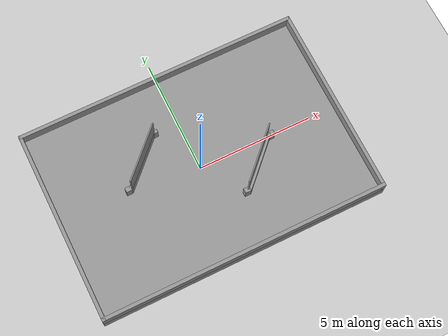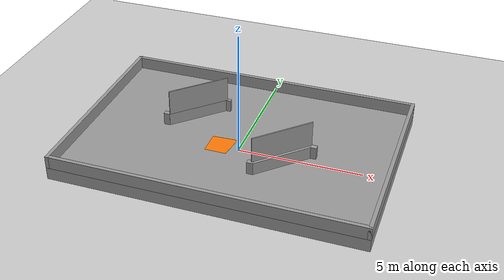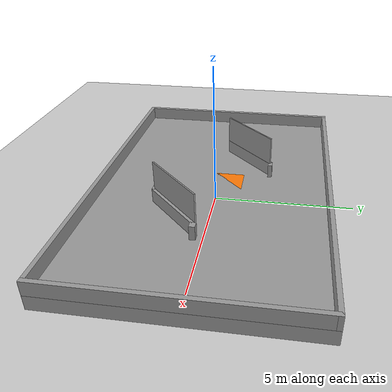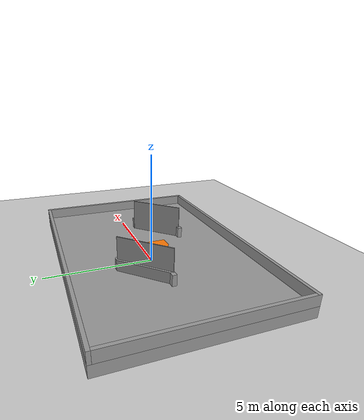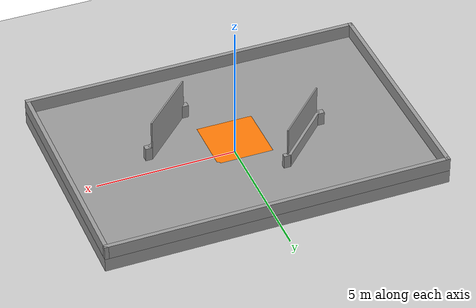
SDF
<sdf version="1.7">
 <world name="default">
  <light name="sun" type="directional">
   <pose>0 0 10 0 -0 0</pose>
   <diffuse>0.8 0.8 0.8 1</diffuse>
   <specular>0.2 0.2 0.2 1</specular>
   <attenuation>
    <range>1000</range>
    <constant>0.9</constant>
    <linear>0.01</linear>
    <quadratic>0.001</quadratic>
   </attenuation>
   <direction>-0.5 0.1 -0.9</direction>
   <spot><inner_angle>0</inner_angle><outer_angle>0</outer_angle><falloff>0</falloff></spot>
  </light>
  <model name="ground_plane">
   <static>1</static>
   <link name="link">
    <collision name="collision">
     <geometry><plane><normal>0 0 1</normal><size>100 100</size></plane></geometry>
     <surface><friction><ode><mu>100</mu><mu2>50</mu2></ode></friction></surface>
    </collision>
    <visual name="visual">
     <cast_shadows>0</cast_shadows>
     <geometry><plane><normal>0 0 1</normal><size>100 100</size></plane></geometry>
     <material>
      <script><uri>file://media/materials/scripts/gazebo.material</uri><name>Gazebo/Grey</name></script>
     </material>
    </visual>
   </link>
  </model>
  <gravity>0 0 -9.8</gravity>
  <magnetic_field>6e-06 2.3e-05 -4.2e-05</magnetic_field>
  <atmosphere type="adiabatic"/>
  <physics type="ode">
   <max_step_size>0.001</max_step_size>
   <real_time_factor>1</real_time_factor>
   <real_time_update_rate>1000</real_time_update_rate>
  </physics>
  <scene><ambient>0.4 0.4 0.4 1</ambient><background>0.7 0.7 0.7 1</background><shadows>1</shadows></scene>
  <audio><device>default</device></audio>
  <spherical_coordinates>
   <surface_model>EARTH_WGS84</surface_model>
   <latitude_deg>0</latitude_deg>
   <longitude_deg>0</longitude_deg>
   <elevation>0</elevation>
   <heading_deg>0</heading_deg>
  </spherical_coordinates>
  <model name="di">
   <pose>1.7795 0 0 0 -0 0</pose>
   <link name="Wall_2">
    <collision name="Wall_2_Collision">
     <geometry><box><size>12.3 8.3 0.5</size></box></geometry>
     <pose>0 0 0.25 0 -0 0</pose>
    </collision>
    <visual name="Wall_2_Visual">
     <pose>0 0 0.25 0 -0 0</pose>
     <geometry><box><size>12.3 8.3 0.5</size></box></geometry>
     <material>
      <script><uri>file://media/materials/scripts/gazebo.material</uri><name>Gazebo/Grey</name></script>
      <ambient>1 1 1 1</ambient>
     </material>
     <meta><layer>0</layer></meta>
    </visual>
    <pose>-1.7795 0 0 0 -0 0</pose>
   </link>
   <static>1</static>
  </model>
  <model name="rmuclin1.0">
   <pose>0 0 0.5 0 -0 0</pose>
   <link name="Wall_18">
    <collision name="Wall_18_Collision">
     <geometry><box><size>0.25 0.15 0.5</size></box></geometry>
     <pose>0 0 0.25 0 -0 0</pose>
    </collision>
    <visual name="Wall_18_Visual">
     <pose>0 0 0.25 0 -0 0</pose>
     <geometry><box><size>0.25 0.15 0.5</size></box></geometry>
     <material>
      <script><uri>file://media/materials/scripts/gazebo.material</uri><name>Gazebo/Grey</name></script>
      <ambient>1 1 1 1</ambient>
     </material>
     <meta><layer>0</layer></meta>
    </visual>
    <pose>-1.12604 1.91893 0 0 -0 0</pose>
   </link>
   <link name="Wall_59">
    <collision name="Wall_59_Collision">
     <geometry><box><size>0.25 0.2 0.5</size></box></geometry>
     <pose>0 0 0.25 0 -0 0</pose>
    </collision>
    <visual name="Wall_59_Visual">
     <pose>0 0 0.25 0 -0 0</pose>
     <geometry><box><size>0.25 0.2 0.5</size></box></geometry>
     <material>
      <script><uri>file://media/materials/scripts/gazebo.material</uri><name>Gazebo/Grey</name></script>
      <ambient>1 1 1 1</ambient>
     </material>
     <meta><layer>0</layer></meta>
    </visual>
    <pose>1.12786 -1.89614 0 0 -0 3.14159</pose>
   </link>
   <link name="Wall_61">
    <collision name="Wall_61_Collision">
     <geometry><box><size>0.25 0.2 0.5</size></box></geometry>
     <pose>0 0 0.25 0 -0 0</pose>
    </collision>
    <visual name="Wall_61_Visual">
     <pose>0 0 0.25 0 -0 0</pose>
     <geometry><box><size>0.25 0.2 0.5</size></box></geometry>
     <material>
      <script><uri>file://media/materials/scripts/gazebo.material</uri><name>Gazebo/Grey</name></script>
      <ambient>1 1 1 1</ambient>
     </material>
     <meta><layer>0</layer></meta>
    </visual>
    <pose>3.07423 -0.18271 0 0 -0 0</pose>
   </link>
   <link name="Wall_65">
    <collision name="Wall_65_Collision"><geometry><box><size>2.01 2 0</size></box></geometry></collision>
    <visual name="Wall_65_Visual">
     <geometry><box><size>2.01 2 0</size></box></geometry>
     <material>
      <script><uri>file://media/materials/scripts/gazebo.material</uri><name>Gazebo/Grey</name></script>
      <ambient>0.996078 0.47451 0.0196078 1</ambient>
     </material>
     <meta><layer>0</layer></meta>
    </visual>
    <pose>-0.01848 -0.044753 0 0 -0 0</pose>
   </link>
   <link name="Wall_67">
    <collision name="Wall_67_Collision">
     <geometry><box><size>2.55 0.15 0.5</size></box></geometry>
     <pose>0 0 0.25 0 -0 0</pose>
    </collision>
    <visual name="Wall_67_Visual">
     <pose>0 0 0.25 0 -0 0</pose>
     <geometry><box><size>2.55 0.15 0.5</size></box></geometry>
     <material>
      <script><uri>file://media/materials/scripts/gazebo.material</uri><name>Gazebo/Grey</name></script>
      <ambient>1 1 1 1</ambient>
     </material>
     <meta><layer>0</layer></meta>
    </visual>
    <pose>-2.09769 1.04354 0 0 -0 0.784874</pose>
   </link>
   <link name="Wall_70">
    <collision name="Wall_70_Collision">
     <geometry><box><size>2.55 0.15 0.5</size></box></geometry>
     <pose>0 0 0.25 0 -0 0</pose>
    </collision>
    <visual name="Wall_70_Visual">
     <pose>0 0 0.25 0 -0 0</pose>
     <geometry><box><size>2.55 0.15 0.5</size></box></geometry>
     <material>
      <script><uri>file://media/materials/scripts/gazebo.material</uri><name>Gazebo/Grey</name></script>
      <ambient>1 1 1 1</ambient>
     </material>
     <meta><layer>0</layer></meta>
    </visual>
    <pose>2.10647 -1.04309 0 0 -0 0.785398</pose>
   </link>
   <link name="Wall_72">
    <collision name="Wall_72_Collision">
     <geometry><box><size>2.536 0.05 1.529</size></box></geometry>
     <pose>0 0 0.7645 0 -0 0</pose>
    </collision>
    <visual name="Wall_72_Visual">
     <pose>0 0 0.7645 0 -0 0</pose>
     <geometry><box><size>2.536 0.05 1.529</size></box></geometry>
     <material>
      <script><uri>file://media/materials/scripts/gazebo.material</uri><name>Gazebo/Grey</name></script>
      <ambient>1 1 1 1</ambient>
     </material>
     <meta><layer>0</layer></meta>
    </visual>
    <pose>-2.05137 1.02063 0 0 -0 0.785398</pose>
   </link>
   <link name="Wall_74">
    <collision name="Wall_74_Collision">
     <geometry><box><size>2.536 0.05 1.529</size></box></geometry>
     <pose>0 0 0.7645 0 -0 0</pose>
    </collision>
    <visual name="Wall_74_Visual">
     <pose>0 0 0.7645 0 -0 0</pose>
     <geometry><box><size>2.536 0.05 1.529</size></box></geometry>
     <material>
      <script><uri>file://media/materials/scripts/gazebo.material</uri><name>Gazebo/Grey</name></script>
      <ambient>1 1 1 1</ambient>
     </material>
     <meta><layer>0</layer></meta>
    </visual>
    <pose>2.06494 -1.00202 0 0 -0 0.785398</pose>
   </link>
   <link name="Wall_90">
    <collision name="Wall_90_Collision">
     <geometry><box><size>0.25 0.2 0.5</size></box></geometry>
     <pose>0 0 0.25 0 -0 0</pose>
    </collision>
    <visual name="Wall_90_Visual">
     <pose>0 0 0.25 0 -0 0</pose>
     <geometry><box><size>0.25 0.2 0.5</size></box></geometry>
     <material>
      <script><uri>file://media/materials/scripts/gazebo.material</uri><name>Gazebo/Grey</name></script>
      <ambient>1 1 1 1</ambient>
     </material>
     <meta><layer>0</layer></meta>
    </visual>
    <pose>-3.07423 0.189364 0 0 -0 0</pose>
   </link>
   <static>1</static>
  </model>
  <model name="rmulout1.0">
   <pose>0 0 0.5 0 -0 0</pose>
   <link name="Wall_1">
    <collision name="Wall_1_Collision">
     <geometry><box><size>8.3 0.15 0.5</size></box></geometry>
     <pose>0 0 0.25 0 -0 0</pose>
    </collision>
    <visual name="Wall_1_Visual">
     <pose>0 0 0.25 0 -0 0</pose>
     <geometry><box><size>8.3 0.15 0.5</size></box></geometry>
     <material>
      <script><uri>file://media/materials/scripts/gazebo.material</uri><name>Gazebo/Grey</name></script>
      <ambient>1 1 1 1</ambient>
     </material>
     <meta><layer>0</layer></meta>
    </visual>
    <pose>-6.075 0 0 0 -0 -1.5708</pose>
   </link>
   <link name="Wall_2">
    <collision name="Wall_2_Collision">
     <geometry><box><size>12.3 0.15 0.5</size></box></geometry>
     <pose>0 0 0.25 0 -0 0</pose>
    </collision>
    <visual name="Wall_2_Visual">
     <pose>0 0 0.25 0 -0 0</pose>
     <geometry><box><size>12.3 0.15 0.5</size></box></geometry>
     <material>
      <script><uri>file://media/materials/scripts/gazebo.material</uri><name>Gazebo/Grey</name></script>
      <ambient>1 1 1 1</ambient>
     </material>
     <meta><layer>0</layer></meta>
    </visual>
    <pose>-0 -4.075 0 0 -0 0</pose>
   </link>
   <link name="Wall_3">
    <collision name="Wall_3_Collision">
     <geometry><box><size>8.3 0.15 0.5</size></box></geometry>
     <pose>0 0 0.25 0 -0 0</pose>
    </collision>
    <visual name="Wall_3_Visual">
     <pose>0 0 0.25 0 -0 0</pose>
     <geometry><box><size>8.3 0.15 0.5</size></box></geometry>
     <material>
      <script><uri>file://media/materials/scripts/gazebo.material</uri><name>Gazebo/Grey</name></script>
      <ambient>1 1 1 1</ambient>
     </material>
     <meta><layer>0</layer></meta>
    </visual>
    <pose>6.075 0 0 0 -0 1.5708</pose>
   </link>
   <link name="Wall_4">
    <collision name="Wall_4_Collision">
     <geometry><box><size>12.3 0.15 0.5</size></box></geometry>
     <pose>0 0 0.25 0 -0 0</pose>
    </collision>
    <visual name="Wall_4_Visual">
     <pose>0 0 0.25 0 -0 0</pose>
     <geometry><box><size>12.3 0.15 0.5</size></box></geometry>
     <material>
      <script><uri>file://media/materials/scripts/gazebo.material</uri><name>Gazebo/Grey</name></script>
      <ambient>1 1 1 1</ambient>
     </material>
     <meta><layer>0</layer></meta>
    </visual>
    <pose>-0 4.075 0 0 -0 3.14159</pose>
   </link>
   <static>1</static>
  </model>
 </world>
</sdf>
